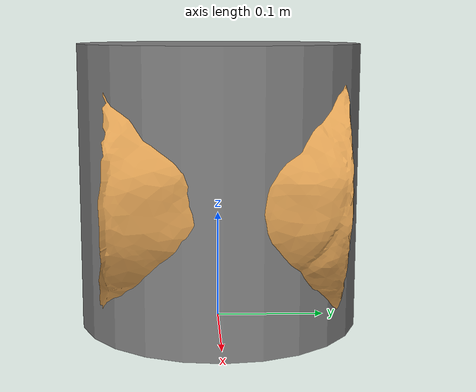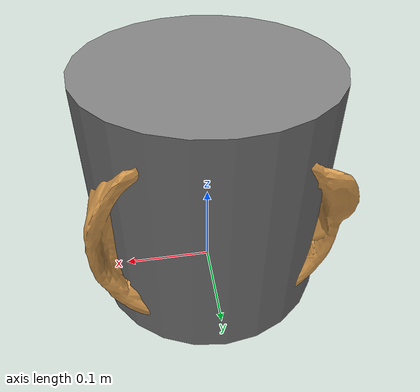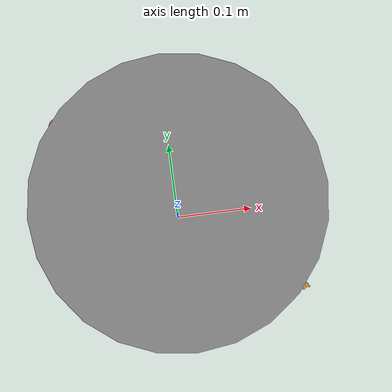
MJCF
<mujoco model="peaches_can">
  <asset>
    <material name="peaches_can_mat" rgba="0.86 0.62 0.32 1" specular="0.3" shininess="0.1"/>
    <mesh name="peaches_can_vis" file="peaches_can_libero.obj" scale="1 1 1"/>
  </asset>
  <worldbody>
    <body>
      <body name="object">
        <geom type="mesh" mesh="peaches_can_vis" material="peaches_can_mat" group="1" contype="0" conaffinity="0"/>
        <geom name="peaches_can_collision" type="cylinder" size="0.12852 0.12851" pos="0 0 0.12851" group="0" density="100" friction="0.95 0.3 0.1" solimp="0.998 0.998 0.001" solref="0.001 1"/>
      </body>
      <site rgba="0 0 0 0" size="0.005" pos="0 0 0" name="bottom_site"/>
      <site rgba="0 0 0 0" size="0.005" pos="0 0 0.25702" name="top_site"/>
      <site rgba="0 0 0 0" size="0.005" pos="0.12852 0 0" name="horizontal_radius_site"/>
    </body>
  </worldbody>
</mujoco>
